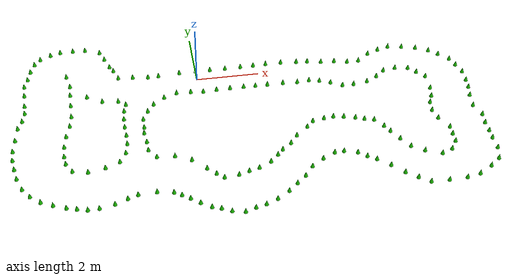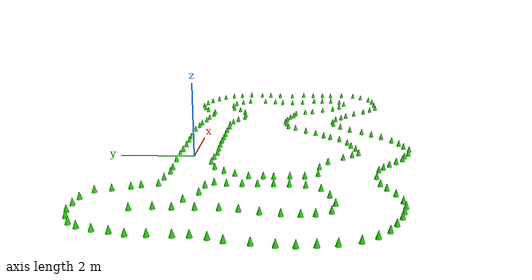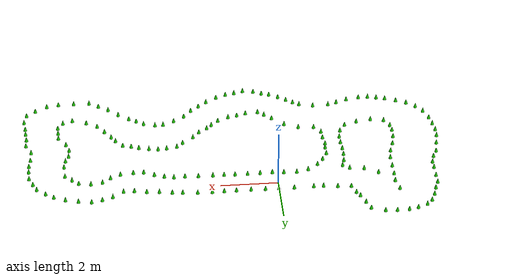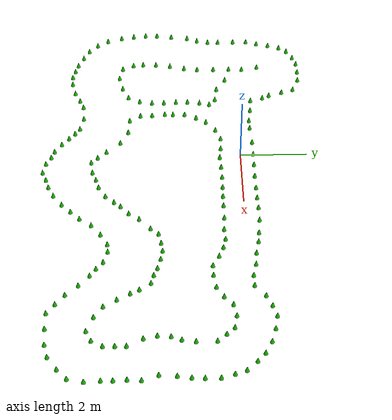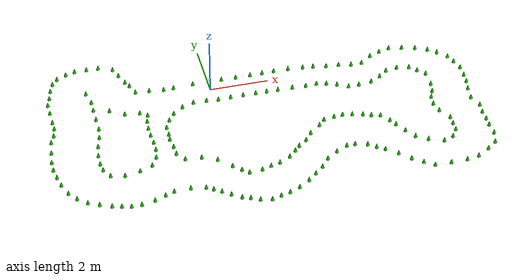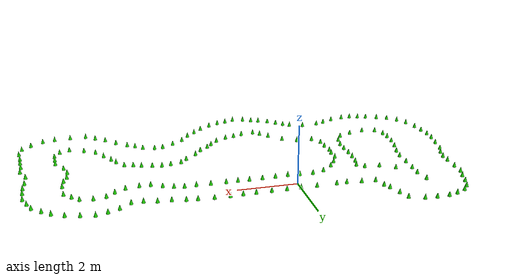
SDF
<?xml version="1.0" ?>
<sdf version="1.6">
  <model name="ino_circuit">
    <static>true</static>
    <link name="link">
      <collision name="collision">
        <geometry>
          <mesh>
            <uri>model://ino_circuit/meshes/ino_circuit.dae</uri>
          </mesh>
        </geometry>
      </collision>
      <visual name="visual">
        <geometry>
          <mesh>
            <uri>model://ino_circuit/meshes/ino_circuit.dae</uri>
          </mesh>
        </geometry>
      </visual>
    </link>
  </model>
</sdf>
